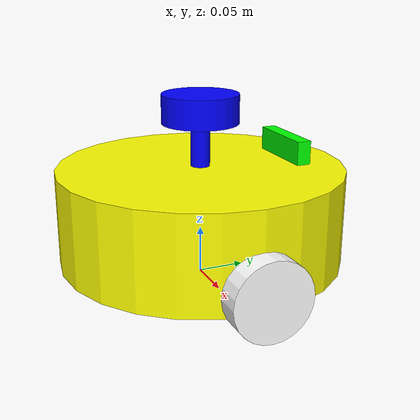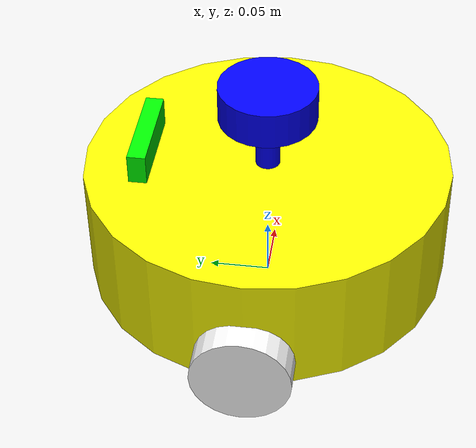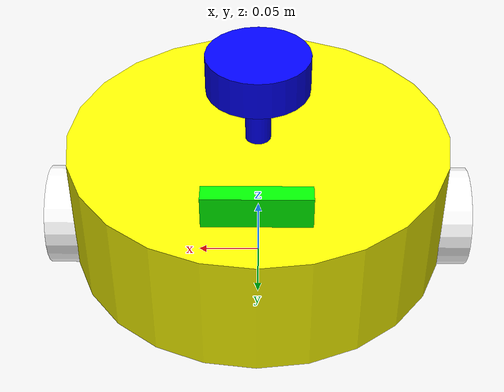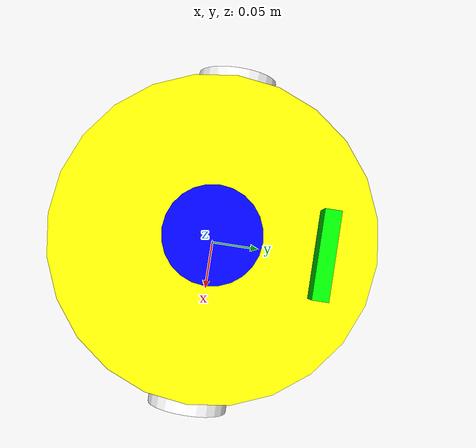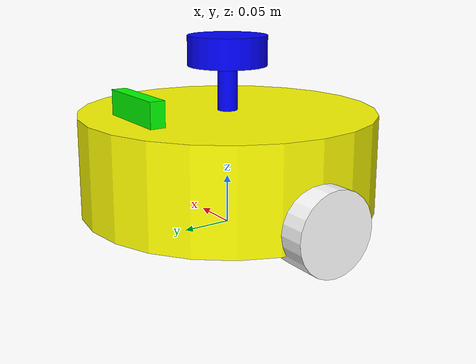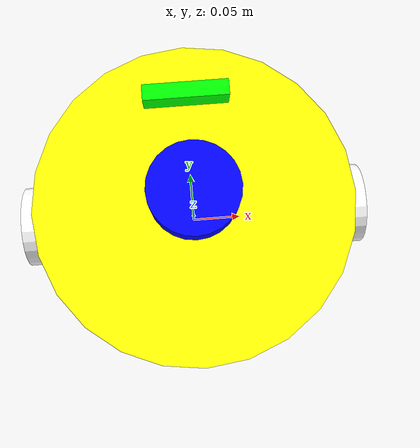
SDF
<sdf version="1.7">
 <world name="world_demo">
  <physics name="1ms" type="ignored">
   <max_step_size>0.01</max_step_size>
   <real_time_factor>1</real_time_factor>
  </physics>
  <plugin name="ignition::gazebo::systems::Physics" filename="libignition-gazebo-physics-system.so"/>
  <plugin name="ignition::gazebo::systems::UserCommands" filename="libignition-gazebo-user-commands-system.so"/>
  <plugin name="ignition::gazebo::systems::SceneBroadcaster" filename="libignition-gazebo-scene-broadcaster-system.so"/>
  <plugin name="ignition::gazebo::systems::Imu" filename="ignition-gazebo-imu-system"/>
  <plugin name="ignition::gazebo::systems::Sensors" filename="ignition-gazebo-sensors-system">
   <render_engine>ogre2</render_engine>
  </plugin>
  <scene>
   <ambient>1 1 1 1</ambient>
   <background>0.3 0.7 0.9 1</background>
   <shadows>0</shadows>
   <grid>1</grid>
  </scene>
  <model name="ground_plane">
   <static>1</static>
   <link name="link">
    <collision name="collision">
     <geometry><plane><normal>0 0 1</normal><size>1 1</size></plane></geometry>
    </collision>
   </link>
  </model>
  <include><uri>model:/home/d22/gz_projects/gz_models/Parrot Bebop 2/model.sdf</uri></include>
  <model name="depot_collision">
   <static>1</static>
   <pose>7.19009 1.09982 0 0 0 0</pose>
   <link name="collision_link">
    <collision name="wall1">
     <pose>0 -7.6129 4.5 0 0 0</pose>
     <geometry><box><size>30.167 0.08 9</size></box></geometry>
    </collision>
    <collision name="wall2">
     <pose>0 7.2875 4.5 0 0 0</pose>
     <geometry><box><size>30.167 0.08 9</size></box></geometry>
    </collision>
    <collision name="wall3">
     <pose>-15 0 4.5 0 0 0</pose>
     <geometry><box><size>0.08 15.360 9</size></box></geometry>
    </collision>
    <collision name="wall4">
     <pose>15 0 4.5 0 0 0</pose>
     <geometry><box><size>0.08 15.360 9</size></box></geometry>
    </collision>
    <collision name="boxes1">
     <pose>0.22268 -4.7268 0.68506 0 0 0</pose>
     <geometry><box><size>1.288 1.422 1.288</size></box></geometry>
    </collision>
    <collision name="boxes2">
     <pose>3.1727 -4.7268 0.68506 0 0 0</pose>
     <geometry><box><size>1.288 1.422 1.288</size></box></geometry>
    </collision>
    <collision name="boxes3">
     <pose>5.95268 -4.7268 0.68506 0 0 0</pose>
     <geometry><box><size>1.288 1.422 1.288</size></box></geometry>
    </collision>
    <collision name="boxes4">
     <pose>8.55887 -4.7268 0.68506 0 0 0</pose>
     <geometry><box><size>1.288 1.422 1.288</size></box></geometry>
    </collision>
    <collision name="boxes5">
     <pose>11.326 -4.7268 0.68506 0 0 0</pose>
     <geometry><box><size>1.288 1.422 1.288</size></box></geometry>
    </collision>
    <collision name="boxes6">
     <pose>0.22268 -2.37448 0.68506 0 0 0</pose>
     <geometry><box><size>1.288 1.422 1.288</size></box></geometry>
    </collision>
    <collision name="boxes7">
     <pose>3.1727 -2.37448 0.68506 0 0 0</pose>
     <geometry><box><size>1.288 1.422 1.288</size></box></geometry>
    </collision>
    <collision name="boxes8">
     <pose>5.95268 -2.37448 0.68506 0 0 0</pose>
     <geometry><box><size>1.288 1.422 1.288</size></box></geometry>
    </collision>
    <collision name="boxes9">
     <pose>8.55887 -2.37448 0.68506 0 0 0</pose>
     <geometry><box><size>1.288 1.422 1.288</size></box></geometry>
    </collision>
    <collision name="boxes10">
     <pose>11.326 -2.37448 0.68506 0 0 0</pose>
     <geometry><box><size>1.288 1.422 1.288</size></box></geometry>
    </collision>
    <collision name="boxes11">
     <pose>-1.2268 4.1557 0.68506 0 0 -1.02799893</pose>
     <geometry><box><size>1.288 1.422 1.288</size></box></geometry>
    </collision>
    <collision name="pilar1">
     <pose>-7.5402 3.6151 1 0 0 0</pose>
     <geometry><box><size>0.465 0.465 2</size></box></geometry>
    </collision>
    <collision name="pilar2">
     <pose>7.4575 3.6151 1 0 0 0</pose>
     <geometry><box><size>0.465 0.465 2</size></box></geometry>
    </collision>
    <collision name="pilar3">
     <pose>-7.5402 -3.8857 1 0 0 0</pose>
     <geometry><box><size>0.465 0.465 2</size></box></geometry>
    </collision>
    <collision name="pilar4">
     <pose>7.4575 -3.8857 1 0 0 0</pose>
     <geometry><box><size>0.465 0.465 2</size></box></geometry>
    </collision>
    <collision name="pallet_mover1">
     <pose>-0.6144 -2.389 0.41838 0 0 0</pose>
     <geometry><box><size>0.363 0.440 0.719</size></box></geometry>
    </collision>
    <collision name="pallet_mover2">
     <pose>-1.6004 4.8225 0.41838 0 0 0</pose>
     <geometry><box><size>0.363 0.244 0.719</size></box></geometry>
    </collision>
    <collision name="stairs">
     <pose>13.018 3.1652 0.25 0 0 0</pose>
     <geometry><box><size>1.299 0.6 0.5</size></box></geometry>
    </collision>
    <collision name="shelfs1">
     <pose>1.4662 -0.017559 0.5 0 0 0</pose>
     <geometry><cylinder><radius>0.03</radius><length>1</length></cylinder></geometry>
    </collision>
    <collision name="shelfs2">
     <pose>2.6483 -0.017559 0.5 0 0 0</pose>
     <geometry><cylinder><radius>0.03</radius><length>1</length></cylinder></geometry>
    </collision>
    <collision name="shelfs3">
     <pose>5.3247 -0.017559 0.5 0 0 0</pose>
     <geometry><cylinder><radius>0.03</radius><length>1</length></cylinder></geometry>
    </collision>
    <collision name="shelfs4">
     <pose>6.5063 -0.017559 0.5 0 0 0</pose>
     <geometry><cylinder><radius>0.03</radius><length>1</length></cylinder></geometry>
    </collision>
    <collision name="shelfs5">
     <pose>9.0758 -0.017559 0.5 0 0 0</pose>
     <geometry><cylinder><radius>0.03</radius><length>1</length></cylinder></geometry>
    </collision>
    <collision name="shelfs6">
     <pose>10.258 -0.017559 0.5 0 0 0</pose>
     <geometry><cylinder><radius>0.03</radius><length>1</length></cylinder></geometry>
    </collision>
    <collision name="shelfs7">
     <pose>1.4662 2.5664 0.5 0 0 0</pose>
     <geometry><cylinder><radius>0.03</radius><length>1</length></cylinder></geometry>
    </collision>
    <collision name="shelfs8">
     <pose>2.6483 2.5664 0.5 0 0 0</pose>
     <geometry><cylinder><radius>0.03</radius><length>1</length></cylinder></geometry>
    </collision>
    <collision name="shelfs9">
     <pose>5.3247 2.5664 0.5 0 0 0</pose>
     <geometry><cylinder><radius>0.03</radius><length>1</length></cylinder></geometry>
    </collision>
    <collision name="shelfs10">
     <pose>6.5063 2.5664 0.5 0 0 0</pose>
     <geometry><cylinder><radius>0.03</radius><length>1</length></cylinder></geometry>
    </collision>
    <collision name="shelfs11">
     <pose>9.0758 2.5664 0.5 0 0 0</pose>
     <geometry><cylinder><radius>0.03</radius><length>1</length></cylinder></geometry>
    </collision>
    <collision name="shelfs12">
     <pose>10.258 2.5664 0.5 0 0 0</pose>
     <geometry><cylinder><radius>0.03</radius><length>1</length></cylinder></geometry>
    </collision>
    <collision name="shelfs13">
     <pose>1.4662 5.1497 0.5 0 0 0</pose>
     <geometry><cylinder><radius>0.03</radius><length>1</length></cylinder></geometry>
    </collision>
    <collision name="shelfs14">
     <pose>2.6483 5.1497 0.5 0 0 0</pose>
     <geometry><cylinder><radius>0.03</radius><length>1</length></cylinder></geometry>
    </collision>
    <collision name="shelfs15">
     <pose>5.3247 5.1497 0.5 0 0 0</pose>
     <geometry><cylinder><radius>0.03</radius><length>1</length></cylinder></geometry>
    </collision>
    <collision name="shelfs16">
     <pose>6.5063 5.1497 0.5 0 0 0</pose>
     <geometry><cylinder><radius>0.03</radius><length>1</length></cylinder></geometry>
    </collision>
    <collision name="shelfs17">
     <pose>9.0758 5.1497 0.5 0 0 0</pose>
     <geometry><cylinder><radius>0.03</radius><length>1</length></cylinder></geometry>
    </collision>
    <collision name="shelfs18">
     <pose>10.258 5.1497 0.5 0 0 0</pose>
     <geometry><cylinder><radius>0.03</radius><length>1</length></cylinder></geometry>
    </collision>
   </link>
  </model>
 </world>
</sdf>

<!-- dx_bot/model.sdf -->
<sdf version='1.11'>
  <model name='dx_bot'>
    <link name='footprint'>
      <inertial>
        <pose>0 0.01 0.090500000000000011 0 0 0</pose>
        <mass>2</mass>
        <inertia>
          <ixx>0.01413791666666666</ixx>
          <ixy>0</ixy>
          <ixz>0</ixz>
          <iyy>0.01044083333333333</iyy>
          <iyz>-0.00077000000000000007</iyz>
          <izz>0.01540241666666666</izz>
        </inertia>
      </inertial>
      <collision name='footprint_fixed_joint_lump__base_link_collision'>
        <pose>0 0 0.069000000000000006 0 0 0</pose>
        <geometry>
          <cylinder>
            <length>0.10000000000000001</length>
            <radius>0.14999999999999999</radius>
          </cylinder>
        </geometry>
      </collision>
      <collision name='footprint_fixed_joint_lump__link_camera_collision_1'>
        <pose>0 0.10000000000000001 0.129 0 0 0</pose>
        <geometry>
          <box>
            <size>0.080000000000000002 0.014999999999999999 0.029999999999999999</size>
          </box>
        </geometry>
      </collision>
      <collision name='footprint_fixed_joint_lump__link_caster_1_collision_2'>
        <pose>0 -0.10000000000000001 0.019 0 0 0</pose>
        <geometry>
          <sphere>
            <radius>0.02</radius>
          </sphere>
        </geometry>
      </collision>
      <collision name='footprint_fixed_joint_lump__link_caster_2_collision_3'>
        <pose>0 0.10000000000000001 0.019 0 0 0</pose>
        <geometry>
          <sphere>
            <radius>0.02</radius>
          </sphere>
        </geometry>
      </collision>
      <collision name='footprint_fixed_joint_lump__link_imu_collision_4'>
        <pose>0 0 0.109 0 0 0</pose>
        <geometry>
          <box>
            <size>0.029999999999999999 0.029999999999999999 0.01</size>
          </box>
        </geometry>
      </collision>
      <collision name='footprint_fixed_joint_lump__rod_collision_5'>
        <pose>0 0 0.13900000000000001 0 0 0</pose>
        <geometry>
          <cylinder>
            <length>0.050000000000000003</length>
            <radius>0.01</radius>
          </cylinder>
        </geometry>
      </collision>
      <collision name='footprint_fixed_joint_lump__link_laser_collision_6'>
        <pose>0 0 0.17899999999999999 0 0 0</pose>
        <geometry>
          <cylinder>
            <length>0.029999999999999999</length>
            <radius>0.040000000000000001</radius>
          </cylinder>
        </geometry>
      </collision>
      <visual name='footprint_fixed_joint_lump__base_link_visual'>
        <pose>0 0 0.069000000000000006 0 0 0</pose>
        <geometry>
          <cylinder>
            <length>0.10000000000000001</length>
            <radius>0.14999999999999999</radius>
          </cylinder>
        </geometry>
        <material>
          <diffuse>1 1 0 1</diffuse>
          <ambient>1 1 0 1</ambient>
        </material>
      </visual>
      <visual name='footprint_fixed_joint_lump__link_camera_visual_1'>
        <pose>0 0.10000000000000001 0.129 0 0 0</pose>
        <geometry>
          <box>
            <size>0.080000000000000002 0.014999999999999999 0.029999999999999999</size>
          </box>
        </geometry>
        <material>
          <diffuse>0 1 0 1</diffuse>
          <ambient>0 1 0 1</ambient>
        </material>
      </visual>
      <visual name='footprint_fixed_joint_lump__link_caster_1_visual_2'>
        <pose>0 -0.10000000000000001 0.019 0 0 0</pose>
        <geometry>
          <sphere>
            <radius>0.02</radius>
          </sphere>
        </geometry>
        <material>
          <diffuse>1 1 1 1</diffuse>
          <ambient>1 1 1 1</ambient>
        </material>
      </visual>
      <visual name='footprint_fixed_joint_lump__link_caster_2_visual_3'>
        <pose>0 0.10000000000000001 0.019 0 0 0</pose>
        <geometry>
          <sphere>
            <radius>0.02</radius>
          </sphere>
        </geometry>
        <material>
          <diffuse>1 1 1 1</diffuse>
          <ambient>1 1 1 1</ambient>
        </material>
      </visual>
      <visual name='footprint_fixed_joint_lump__link_imu_visual_4'>
        <pose>0 0 0.109 0 0 0</pose>
        <geometry>
          <box>
            <size>0.029999999999999999 0.029999999999999999 0.01</size>
          </box>
        </geometry>
        <material>
          <diffuse>0 0 0 1</diffuse>
          <ambient>0 0 0 1</ambient>
        </material>
      </visual>
      <visual name='footprint_fixed_joint_lump__rod_visual_5'>
        <pose>0 0 0.13900000000000001 0 0 0</pose>
        <geometry>
          <cylinder>
            <length>0.050000000000000003</length>
            <radius>0.01</radius>
          </cylinder>
        </geometry>
        <material>
          <diffuse>0 0 1 1</diffuse>
          <ambient>0 0 1 1</ambient>
        </material>
      </visual>
      <visual name='footprint_fixed_joint_lump__link_laser_visual_6'>
        <pose>0 0 0.17899999999999999 0 0 0</pose>
        <geometry>
          <cylinder>
            <length>0.029999999999999999</length>
            <radius>0.040000000000000001</radius>
          </cylinder>
        </geometry>
        <material>
          <diffuse>0 0 1 1</diffuse>
          <ambient>0 0 1 1</ambient>
        </material>
      </visual>
    </link>
    <joint name='joint_base-link_wheel_1' type='continuous'>
      <pose relative_to='footprint'>-0.14999999999999999 0 0.039000000000000007 0 0 0</pose>
      <parent>footprint</parent>
      <child>link_wheel_1</child>
      <axis>
        <xyz>1 0 0</xyz>
        <dynamics>
          <spring_reference>0</spring_reference>
          <spring_stiffness>0</spring_stiffness>
        </dynamics>
      </axis>
    </joint>
    <link name='link_wheel_1'>
      <pose relative_to='joint_base-link_wheel_1'>0 0 0 0 0 0</pose>
      <inertial>
        <pose>0 0 0 0 0 0</pose>
        <mass>0.10000000000000001</mass>
        <inertia>
          <ixx>5.3333333333333333e-05</ixx>
          <ixy>0</ixy>
          <ixz>0</ixz>
          <iyy>5.3333333333333333e-05</iyy>
          <iyz>0</iyz>
          <izz>8.0000000000000007e-05</izz>
        </inertia>
      </inertial>
      <collision name='link_wheel_1_collision'>
        <pose>0 0 0 0 1.5707963267948966 0</pose>
        <geometry>
          <cylinder>
            <length>0.040000000000000001</length>
            <radius>0.040000000000000001</radius>
          </cylinder>
        </geometry>
      </collision>
      <visual name='link_wheel_1_visual'>
        <pose>0 0 0 0 1.5707963267948966 0</pose>
        <geometry>
          <cylinder>
            <length>0.040000000000000001</length>
            <radius>0.040000000000000001</radius>
          </cylinder>
        </geometry>
        <material>
          <diffuse>1 1 1 1</diffuse>
          <ambient>1 1 1 1</ambient>
        </material>
      </visual>
    </link>
    <joint name='joint_base-link_wheel_2' type='continuous'>
      <pose relative_to='footprint'>0.14999999999999999 0 0.039000000000000007 0 0 0</pose>
      <parent>footprint</parent>
      <child>link_wheel_2</child>
      <axis>
        <xyz>1 0 0</xyz>
        <dynamics>
          <spring_reference>0</spring_reference>
          <spring_stiffness>0</spring_stiffness>
        </dynamics>
      </axis>
    </joint>
    <link name='link_wheel_2'>
      <pose relative_to='joint_base-link_wheel_2'>0 0 0 0 0 0</pose>
      <inertial>
        <pose>0 0 0 0 0 0</pose>
        <mass>0.10000000000000001</mass>
        <inertia>
          <ixx>5.3333333333333333e-05</ixx>
          <ixy>0</ixy>
          <ixz>0</ixz>
          <iyy>5.3333333333333333e-05</iyy>
          <iyz>0</iyz>
          <izz>8.0000000000000007e-05</izz>
        </inertia>
      </inertial>
      <collision name='link_wheel_2_collision'>
        <pose>0 0 0 0 1.5707963267948966 0</pose>
        <geometry>
          <cylinder>
            <length>0.040000000000000001</length>
            <radius>0.040000000000000001</radius>
          </cylinder>
        </geometry>
      </collision>
      <visual name='link_wheel_2_visual'>
        <pose>0 0 0 0 1.5707963267948966 0</pose>
        <geometry>
          <cylinder>
            <length>0.040000000000000001</length>
            <radius>0.040000000000000001</radius>
          </cylinder>
        </geometry>
        <material>
          <diffuse>1 1 1 1</diffuse>
          <ambient>1 1 1 1</ambient>
        </material>
      </visual>
    </link>
    <frame name='joint_base-link_camera' attached_to='base_link'>
      <pose>0 0.10000000000000001 0.059999999999999998 0 0 0</pose>
    </frame>
    <frame name='link_camera' attached_to='joint_base-link_camera'>
      <pose>0 0 0 0 0 0</pose>
    </frame>
    <frame name='joint_base-link_caster_1' attached_to='base_link'>
      <pose>0 -0.10000000000000001 -0.050000000000000003 0 0 0</pose>
    </frame>
    <frame name='link_caster_1' attached_to='joint_base-link_caster_1'>
      <pose>0 0 0 0 0 0</pose>
    </frame>
    <frame name='joint_base-link_caster_2' attached_to='base_link'>
      <pose>0 0.10000000000000001 -0.050000000000000003 0 0 0</pose>
    </frame>
    <frame name='link_caster_2' attached_to='joint_base-link_caster_2'>
      <pose>0 0 0 0 0 0</pose>
    </frame>
    <frame name='joint_base-link_imu' attached_to='base_link'>
      <pose>0 0 0.040000000000000001 0 0 0</pose>
    </frame>
    <frame name='link_imu' attached_to='joint_base-link_imu'>
      <pose>0 0 0 0 0 0</pose>
    </frame>
    <frame name='joint_rod-link_laser' attached_to='rod'>
      <pose>0 0 0.040000000000000001 0 0 0</pose>
    </frame>
    <frame name='link_laser' attached_to='joint_rod-link_laser'>
      <pose>0 0 0 0 0 0</pose>
    </frame>
    <frame name='joint_base-rod' attached_to='base_link'>
      <pose>0 0 0.070000000000000007 0 0 0</pose>
    </frame>
    <frame name='rod' attached_to='joint_base-rod'>
      <pose>0 0 0 0 0 0</pose>
    </frame>
    <frame name='joint_base_link-footprint' attached_to='footprint'>
      <pose>0 0 0.069000000000000006 0 0 0</pose>
    </frame>
    <frame name='base_link' attached_to='joint_base_link-footprint'>
      <pose>0 0 0 0 0 0</pose>
    </frame>

<plugin
    filename="gz-sim-diff-drive-system"
    name="gz::sim::systems::DiffDrive">
    <left_joint>link_wheel_1</left_joint>
    <right_joint>link_wheel_1</right_joint>
    <wheel_separation>1.2</wheel_separation>
    <wheel_radius>0.4</wheel_radius>
    <odom_publish_frequency>1</odom_publish_frequency>
    <topic>cmd_vel</topic>
</plugin>

<!-- Moving Forward-->
<plugin filename="gz-sim-triggered-publisher-system"
        name="gz::sim::systems::TriggeredPublisher">
    <input type="gz.msgs.Int32" topic="/keyboard/keypress">
        <match field="data">20</match>
    </input>
    <output type="gz.msgs.Twist" topic="/cmd_vel">
        linear: {x: 0.5}, angular: {z: 0.0}
    </output>
</plugin>
<!-- Moving Backward-->
<plugin filename="gz-sim-triggered-publisher-system"
        name="gz::sim::systems::TriggeredPublisher">
    <input type="gz.msgs.Int32" topic="/keyboard/keypress">
        <match field="data">10</match>
    </input>
    <output type="gz.msgs.Twist" topic="/cmd_vel">
        linear: {x: -0.5}, angular: {z: 0.0}
    </output>
</plugin>

<!-- Moving leftward-->
<plugin filename="gz-sim-triggered-publisher-system"
        name="gz::sim::systems::TriggeredPublisher">
    <input type="gz.msgs.Int32" topic="/keyboard/keypress">
        <match field="data">30</match>
    </input>
    <output type="gz.msgs.Twist" topic="/cmd_vel">
        linear: {x: 0.0}, angular: {z: 2.0}
    </output>
</plugin>

<!-- Moving rightwards-->
<plugin filename="gz-sim-triggered-publisher-system"
        name="gz::sim::systems::TriggeredPublisher">
    <input type="gz.msgs.Int32" topic="/keyboard/keypress">
      <match field="data">40</match>
    </input>
    <output type="gz.msgs.Twist" topic="/cmd_vel">
        linear: {x: 0.0}, angular: {z: -2.0}
    </output>
</plugin>

<!-- stop moving-->
<plugin filename="gz-sim-triggered-publisher-system"
        name="gz::sim::systems::TriggeredPublisher">
    <input type="gz.msgs.Int32" topic="/keyboard/keypress">
      <match field="data">0</match>
    </input>
    <output type="gz.msgs.Twist" topic="/cmd_vel">
        linear: {x: 0.0}, angular: {z: 0.0}
    </output>
</plugin>

  </model>
</sdf>
